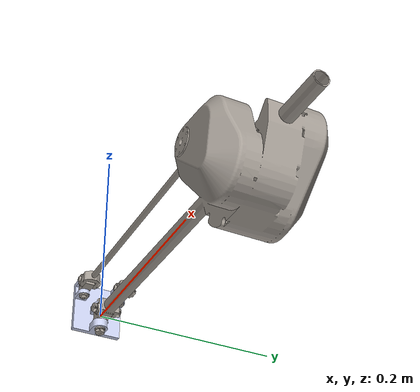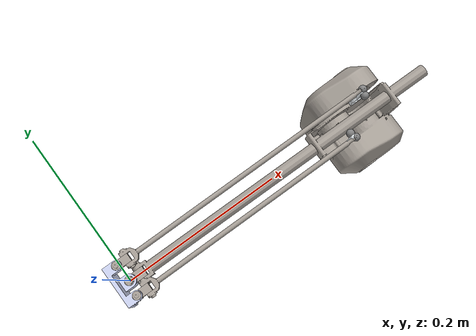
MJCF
<mujoco model="rsrr_urdf">
  <compiler angle="radian" meshdir="meshes/"/>
  <option>
    <flag contact = 'disable'/>
  </option>

  <default>
    <motor ctrlrange="-8 8"/>
    <equality solref='0.00000001 1'/>
  </default>

  <contact>
    <exclude body1 = 'world' body2 = 'left_mid' />
    <exclude body1 = 'world' body2 = 'right_mid'/>
    <exclude body1 = 'world' body2 = 'main_mid' />
    <exclude body1 = 'right_rod' body2 = 'motor_right' />
    <exclude body1 = 'left_rod' body2 = 'motor_left' />
    <exclude body1 = 'motor_right' body2 = 'main_mid' />
    <exclude body1 = 'motor_left' body2 = 'main_mid' />
    <exclude body1 = 'left_mid' body2 = 'left_rod' />
    <exclude body1 = 'right_mid' body2 = 'right_rod' />
    <exclude body1 = 'main_mid' body2 = 'main_rod' />
  </contact>

  <equality>
    <connect site1 = 'P1L' site2 = 'P2L'/>
    <connect site1 = 'P1R' site2 = 'P2R'/>
  </equality>

  <asset>
    <mesh name="base_link" content_type="model/stl" file="base_link.STL"/>
    <mesh name="left_mid" content_type="model/stl" file="left_mid.STL"/>
    <mesh name="left_rod" content_type="model/stl" file="left_rod.STL"/>
    <mesh name="right_mid" content_type="model/stl" file="right_mid.STL"/>
    <mesh name="right_rod" content_type="model/stl" file="right_rod.STL"/>
    <mesh name="main_mid" content_type="model/stl" file="main_mid.STL"/>
    <mesh name="main_rod" content_type="model/stl" file="main_rod.STL"/>
    <mesh name="motor_left" content_type="model/stl" file="motor_left.STL"/>
    <mesh name="motor_right" content_type="model/stl" file="motor_right.STL"/>
  </asset>

  <actuator>
    <motor name="motor_left" joint="theta1" />
    <motor name="motor_right" joint="theta2" />
    <motor joint="phi1" />
    <motor joint="phi2" />
    <motor joint="psi1" />
    <motor joint="psi2" />
    <motor joint="alpha1" />
    <motor joint="alpha2" />
  </actuator>

  <sensor>
    <jointpos name="theta1_pos" joint="theta1" noise="0"/>
    <jointpos name="theta2_pos" joint="theta2" noise="0"/>
    <jointpos name="phi1_pos" joint="phi1" noise="0"/>
    <jointpos name="phi2_pos" joint="phi2" noise="0"/>
    <jointpos name="psi1_pos" joint="psi1" noise="0"/>
    <jointpos name="psi2_pos" joint="psi2" noise="0"/>
    <jointpos name="alpha1_pos" joint="alpha1" noise="0"/>
    <jointpos name="alpha2_pos" joint="alpha2" noise="0"/>

    <jointvel name="theta1_vel" joint="theta1" noise="0"/>
    <jointvel name="theta2_vel" joint="theta2" noise="0"/>
    <jointvel name="phi1_vel" joint="phi1" noise="0"/>
    <jointvel name="phi2_vel" joint="phi2" noise="0"/>
    <jointvel name="psi1_vel" joint="psi1" noise="0"/>
    <jointvel name="psi2_vel" joint="psi2" noise="0"/>
    <jointvel name="alpha1_vel" joint="alpha1" noise="0"/>
    <jointvel name="alpha2_vel" joint="alpha2" noise="0"/>

    <jointactuatorfrc name="theta1_torque" joint="theta1" noise="0"/>
    <jointactuatorfrc name="theta2_torque" joint="theta2" noise="0"/>
    <jointactuatorfrc name="psi1_torque" joint="psi1" noise="0"/>
    <jointactuatorfrc name="psi2_torque" joint="psi2" noise="0"/>
    <jointactuatorfrc name="phi1_torque" joint="phi1" noise="0"/>
    <jointactuatorfrc name="phi2_torque" joint="phi2" noise="0"/>
    <jointactuatorfrc name="alpha1_torque" joint="alpha1" noise="0"/>
    <jointactuatorfrc name="alpha2_torque" joint="alpha2" noise="0"/>

    <force name="force" site="ft_sensor" />
    <torque name="torque" site="ft_sensor" />
  </sensor>

  <worldbody>
    <body name="base" pos="0 0 0" quat="0.5 0.5 0.5 0.5">
    <site name="ft_sensor" pos="0 0 0" quat="0.5 -0.5 -0.5 -0.5"/>
    <geom type="mesh" contype="0" conaffinity="0" group="1" density="0" rgba="0.79216 0.81961 0.93333 1" mesh="base_link"/>
    <geom type="mesh" rgba="0.79216 0.81961 0.93333 1" mesh="base_link"/>
    <body name="left_mid" pos="-0.02 0.03 0">
      <inertial pos="-9.7611e-08 0 0.0016437" quat="1 -7.70125e-05 9.5208e-09 0.000123627" mass="0.0077202" diaginertia="1.3182e-07 1.1908e-07 9.0186e-08"/>
      <joint name="phi1" pos="0 0 0" axis="0 1 0" range="-1.5707 1.5707"/>
      <geom type="mesh" contype="0" conaffinity="0" group="1" density="0" rgba="0.64706 0.61961 0.58824 1" mesh="left_mid"/>
      <geom type="mesh" rgba="0.64706 0.61961 0.58824 1" mesh="left_mid"/>
      <body name="left_rod" pos="0 0 0.014">
        <inertial pos="-9.6288e-10 -3.389e-08 0.078858" quat="0.707107 0 0 0.707107" mass="0.015417" diaginertia="4.2268e-05 4.2245e-05 1.474e-07"/>
        <joint name="phi2" pos="0 0 0" axis="1 0 0" range="-1.5707 1.5707"/>
        <geom type="mesh" contype="0" conaffinity="0" group="1" density="0" rgba="0.64706 0.61961 0.58824 1" mesh="left_rod"/>
        <geom type="mesh" rgba="0.64706 0.61961 0.58824 1" mesh="left_rod"/>
        <site name='P2L' pos ='0 0 0.28825'/>
      </body>
    </body>
    <body name="right_mid" pos="0.02 0.03 0">
      <inertial pos="-1.036e-07 0 0.0016437" quat="1 -7.59829e-05 8.55466e-09 0.000112587" mass="0.0077202" diaginertia="1.3182e-07 1.1908e-07 9.0186e-08"/>
      <joint name="psi1" pos="0 0 0" axis="0 1 0" range="-1.5707 1.5707"/>
      <geom type="mesh" contype="0" conaffinity="0" group="1" density="0" rgba="0.64706 0.61961 0.58824 1" mesh="right_mid"/>
      <geom type="mesh" rgba="0.64706 0.61961 0.58824 1" mesh="right_mid"/>
      <body name="right_rod" pos="0 0 0.014">
        <inertial pos="-8.9707e-10 -5.8694e-08 0.094845" quat="0.707107 0 0 0.707107" mass="0.016548" diaginertia="6.4693e-05 6.467e-05 1.5249e-07"/>
        <joint name="psi2" pos="0 0 0" axis="1 0 0" range="-1.5707 1.5707"/>
        <geom type="mesh" contype="0" conaffinity="0" group="1" density="0" rgba="0.64706 0.61961 0.58824 1" mesh="right_rod"/>
        <geom type="mesh" rgba="0.64706 0.61961 0.58824 1" mesh="right_rod"/>
        <site name='P2R' pos ='0 0 0.32825'/>
      </body>
    </body>
    <body name="main_mid">
      <inertial pos="1.7091e-07 0 0.0014798" quat="0.707038 0.707176 -1.93018e-05 -1.93056e-05" mass="0.016979" diaginertia="5.3266e-07 4.0061e-07 3.4438e-07"/>
      <joint name="alpha1" pos="0 0 0" axis="0 1 0" range="-1.5707 1.5707"/>
      <geom type="mesh" contype="0" conaffinity="0" group="1" density="0" rgba="0.64706 0.61961 0.58824 1" mesh="main_mid"/>
      <geom type="mesh" rgba="0.64706 0.61961 0.58824 1" mesh="main_mid"/>
      <body name="main_rod" pos="0 0 0.015">
        <inertial pos="2.6619e-10 -0.017234 0.27696" quat="0.999912 0.0131594 0.00160446 2.11155e-05" mass="0.25186" diaginertia="0.000779037 0.000657811 0.000137153"/>
        <joint name="alpha2" pos="0 0 0" axis="1 0 0" range="-1.5707 1.5707"/>
        <geom type="mesh" contype="0" conaffinity="0" group="1" density="0" rgba="0.64706 0.61961 0.58824 1" mesh="main_rod"/>
        <geom type="mesh" rgba="0.64706 0.61961 0.58824 1" mesh="main_rod"/>
        <body name="motor_left" pos="0 0 0.285">
          <inertial pos="-0.018088 0.0089832 4.1527e-09" quat="0.707105 0.707105 -0.00168255 -0.00168255" mass="0.004295" diaginertia="8.56776e-07 7.1495e-07 1.52664e-07"/>
          <joint name="theta1" pos="0 0 0" axis="1 0 0" range="-1.5707 1.5707" damping="0.1" armature="0.01" frictionloss="0.2"/>
          <geom type="mesh" contype="0" conaffinity="0" group="1" density="0" rgba="0.89804 0.91765 0.92941 1" mesh="motor_left"/>
          <geom type="mesh" rgba="0.89804 0.91765 0.92941 1" mesh="motor_left"/>
          <site name='P1L' pos ='-0.0128 0.030 0'/>
        </body>
        <body name="motor_right" pos="0 -0.0010529 0.325">
          <inertial pos="0.018088 0.0089832 -3.9744e-09" quat="0.707105 0.707105 0.00168255 0.00168255" mass="0.004295" diaginertia="8.56776e-07 7.1495e-07 1.52664e-07"/>
          <joint name="theta2" pos="0 0 0" axis="1 0 0" range="-1.5707 1.5707" damping="0.1" armature="0.01" frictionloss="0.2"/>
          <geom type="mesh" contype="0" conaffinity="0" group="1" density="0" rgba="0.89804 0.91765 0.92941 1" mesh="motor_right"/>
          <geom type="mesh" rgba="0.89804 0.91765 0.92941 1" mesh="motor_right"/>
          <site name='P1R' pos ='0.0128 0.030 0'/>
        </body>
      </body>
    </body>
    </body>
  </worldbody>
</mujoco>
